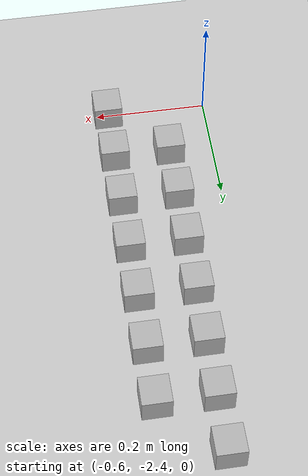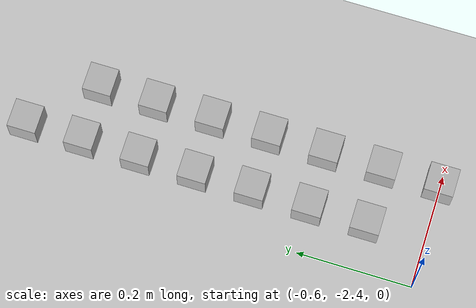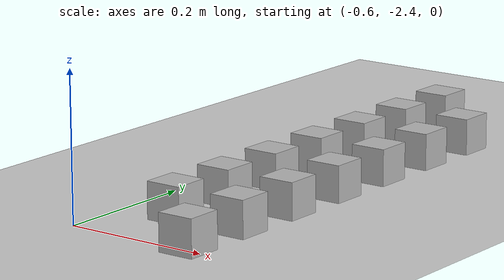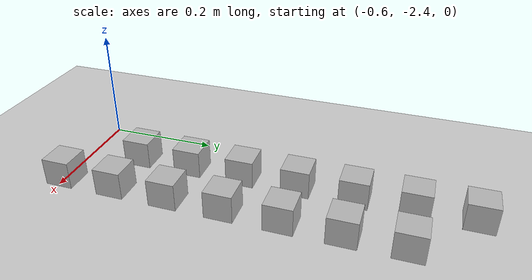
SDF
<sdf version="1.6">
 <world name="default">
  <model name="ground_plane">
   <static>1</static>
   <link name="link">
    <collision name="collision">
     <geometry><plane><normal>0 0 1</normal><size>100 100</size></plane></geometry>
     <surface><friction><ode><mu>100</mu><mu2>50</mu2></ode></friction></surface>
    </collision>
    <visual name="visual">
     <cast_shadows>0</cast_shadows>
     <geometry><plane><normal>0 0 1</normal><size>100 100</size></plane></geometry>
     <material>
      <script><uri>file://media/materials/scripts/gazebo.material</uri><name>Gazebo/Grey</name></script>
     </material>
    </visual>
   </link>
  </model>
  <model name="at321">
   <static>0</static>
   <link name="link">
    <inertial>
     <mass>0.01</mass>
     <inertia><ixx>4e-05</ixx><ixy>0</ixy><ixz>0</ixz><iyy>4e-05</iyy><iyz>0</iyz><izz>4e-05</izz></inertia>
    </inertial>
    <visual name="visual">
     <geometry><box><size>0.05 0.05 0.05</size></box></geometry>
     <material>
      <script>
       <uri>model://at0/materials/scripts</uri>
       <uri>model://at0/materials/textures</uri>
       <name>at0/Diffuse</name>
      </script>
     </material>
    </visual>
    <collision name="collision">
     <geometry><box><size>0.05 0.05 0.05</size></box></geometry>
     <surface><friction><ode><mu>0.8</mu><mu2>0.7</mu2></ode></friction></surface>
    </collision>
   </link>
   <pose>-0.419724 -2.398 0.025 0 -0 0</pose>
  </model>
  <model name="at328">
   <static>0</static>
   <link name="link">
    <inertial>
     <mass>0.01</mass>
     <inertia><ixx>4e-05</ixx><ixy>0</ixy><ixz>0</ixz><iyy>4e-05</iyy><iyz>0</iyz><izz>4e-05</izz></inertia>
    </inertial>
    <visual name="visual">
     <geometry><box><size>0.05 0.05 0.05</size></box></geometry>
     <material>
      <script>
       <uri>model://at0/materials/scripts</uri>
       <uri>model://at0/materials/textures</uri>
       <name>at0/Diffuse</name>
      </script>
     </material>
    </visual>
    <collision name="collision">
     <geometry><box><size>0.05 0.05 0.05</size></box></geometry>
     <surface><friction><ode><mu>0.8</mu><mu2>0.7</mu2></ode></friction></surface>
    </collision>
   </link>
   <pose>-0.519724 -2.298 0.025 0 -0 0</pose>
  </model>
  <model name="at329">
   <static>0</static>
   <link name="link">
    <inertial>
     <mass>0.01</mass>
     <inertia><ixx>4e-05</ixx><ixy>0</ixy><ixz>0</ixz><iyy>4e-05</iyy><iyz>0</iyz><izz>4e-05</izz></inertia>
    </inertial>
    <visual name="visual">
     <geometry><box><size>0.05 0.05 0.05</size></box></geometry>
     <material>
      <script>
       <uri>model://at0/materials/scripts</uri>
       <uri>model://at0/materials/textures</uri>
       <name>at0/Diffuse</name>
      </script>
     </material>
    </visual>
    <collision name="collision">
     <geometry><box><size>0.05 0.05 0.05</size></box></geometry>
     <surface><friction><ode><mu>0.8</mu><mu2>0.7</mu2></ode></friction></surface>
    </collision>
   </link>
   <pose>-0.419724 -2.298 0.025 0 -0 0</pose>
  </model>
  <model name="at336">
   <static>0</static>
   <link name="link">
    <inertial>
     <mass>0.01</mass>
     <inertia><ixx>4e-05</ixx><ixy>0</ixy><ixz>0</ixz><iyy>4e-05</iyy><iyz>0</iyz><izz>4e-05</izz></inertia>
    </inertial>
    <visual name="visual">
     <geometry><box><size>0.05 0.05 0.05</size></box></geometry>
     <material>
      <script>
       <uri>model://at0/materials/scripts</uri>
       <uri>model://at0/materials/textures</uri>
       <name>at0/Diffuse</name>
      </script>
     </material>
    </visual>
    <collision name="collision">
     <geometry><box><size>0.05 0.05 0.05</size></box></geometry>
     <surface><friction><ode><mu>0.8</mu><mu2>0.7</mu2></ode></friction></surface>
    </collision>
   </link>
   <pose>-0.519724 -2.198 0.025 0 -0 0</pose>
  </model>
  <model name="at337">
   <static>0</static>
   <link name="link">
    <inertial>
     <mass>0.01</mass>
     <inertia><ixx>4e-05</ixx><ixy>0</ixy><ixz>0</ixz><iyy>4e-05</iyy><iyz>0</iyz><izz>4e-05</izz></inertia>
    </inertial>
    <visual name="visual">
     <geometry><box><size>0.05 0.05 0.05</size></box></geometry>
     <material>
      <script>
       <uri>model://at0/materials/scripts</uri>
       <uri>model://at0/materials/textures</uri>
       <name>at0/Diffuse</name>
      </script>
     </material>
    </visual>
    <collision name="collision">
     <geometry><box><size>0.05 0.05 0.05</size></box></geometry>
     <surface><friction><ode><mu>0.8</mu><mu2>0.7</mu2></ode></friction></surface>
    </collision>
   </link>
   <pose>-0.419724 -2.198 0.025 0 -0 0</pose>
  </model>
  <model name="at344">
   <static>0</static>
   <link name="link">
    <inertial>
     <mass>0.01</mass>
     <inertia><ixx>4e-05</ixx><ixy>0</ixy><ixz>0</ixz><iyy>4e-05</iyy><iyz>0</iyz><izz>4e-05</izz></inertia>
    </inertial>
    <visual name="visual">
     <geometry><box><size>0.05 0.05 0.05</size></box></geometry>
     <material>
      <script>
       <uri>model://at0/materials/scripts</uri>
       <uri>model://at0/materials/textures</uri>
       <name>at0/Diffuse</name>
      </script>
     </material>
    </visual>
    <collision name="collision">
     <geometry><box><size>0.05 0.05 0.05</size></box></geometry>
     <surface><friction><ode><mu>0.8</mu><mu2>0.7</mu2></ode></friction></surface>
    </collision>
   </link>
   <pose>-0.519724 -2.098 0.025 0 -0 0</pose>
  </model>
  <model name="at345">
   <static>0</static>
   <link name="link">
    <inertial>
     <mass>0.01</mass>
     <inertia><ixx>4e-05</ixx><ixy>0</ixy><ixz>0</ixz><iyy>4e-05</iyy><iyz>0</iyz><izz>4e-05</izz></inertia>
    </inertial>
    <visual name="visual">
     <geometry><box><size>0.05 0.05 0.05</size></box></geometry>
     <material>
      <script>
       <uri>model://at0/materials/scripts</uri>
       <uri>model://at0/materials/textures</uri>
       <name>at0/Diffuse</name>
      </script>
     </material>
    </visual>
    <collision name="collision">
     <geometry><box><size>0.05 0.05 0.05</size></box></geometry>
     <surface><friction><ode><mu>0.8</mu><mu2>0.7</mu2></ode></friction></surface>
    </collision>
   </link>
   <pose>-0.419724 -2.098 0.025 0 -0 0</pose>
  </model>
  <model name="at352">
   <static>0</static>
   <link name="link">
    <inertial>
     <mass>0.01</mass>
     <inertia><ixx>4e-05</ixx><ixy>0</ixy><ixz>0</ixz><iyy>4e-05</iyy><iyz>0</iyz><izz>4e-05</izz></inertia>
    </inertial>
    <visual name="visual">
     <geometry><box><size>0.05 0.05 0.05</size></box></geometry>
     <material>
      <script>
       <uri>model://at0/materials/scripts</uri>
       <uri>model://at0/materials/textures</uri>
       <name>at0/Diffuse</name>
      </script>
     </material>
    </visual>
    <collision name="collision">
     <geometry><box><size>0.05 0.05 0.05</size></box></geometry>
     <surface><friction><ode><mu>0.8</mu><mu2>0.7</mu2></ode></friction></surface>
    </collision>
   </link>
   <pose>-0.519724 -1.998 0.025 0 -0 0</pose>
  </model>
  <model name="at353">
   <static>0</static>
   <link name="link">
    <inertial>
     <mass>0.01</mass>
     <inertia><ixx>4e-05</ixx><ixy>0</ixy><ixz>0</ixz><iyy>4e-05</iyy><iyz>0</iyz><izz>4e-05</izz></inertia>
    </inertial>
    <visual name="visual">
     <geometry><box><size>0.05 0.05 0.05</size></box></geometry>
     <material>
      <script>
       <uri>model://at0/materials/scripts</uri>
       <uri>model://at0/materials/textures</uri>
       <name>at0/Diffuse</name>
      </script>
     </material>
    </visual>
    <collision name="collision">
     <geometry><box><size>0.05 0.05 0.05</size></box></geometry>
     <surface><friction><ode><mu>0.8</mu><mu2>0.7</mu2></ode></friction></surface>
    </collision>
   </link>
   <pose>-0.419724 -1.998 0.025 0 -0 0</pose>
  </model>
  <model name="at360">
   <static>0</static>
   <link name="link">
    <inertial>
     <mass>0.01</mass>
     <inertia><ixx>4e-05</ixx><ixy>0</ixy><ixz>0</ixz><iyy>4e-05</iyy><iyz>0</iyz><izz>4e-05</izz></inertia>
    </inertial>
    <visual name="visual">
     <geometry><box><size>0.05 0.05 0.05</size></box></geometry>
     <material>
      <script>
       <uri>model://at0/materials/scripts</uri>
       <uri>model://at0/materials/textures</uri>
       <name>at0/Diffuse</name>
      </script>
     </material>
    </visual>
    <collision name="collision">
     <geometry><box><size>0.05 0.05 0.05</size></box></geometry>
     <surface><friction><ode><mu>0.8</mu><mu2>0.7</mu2></ode></friction></surface>
    </collision>
   </link>
   <pose>-0.519724 -1.898 0.025 0 -0 0</pose>
  </model>
  <model name="at361">
   <static>0</static>
   <link name="link">
    <inertial>
     <mass>0.01</mass>
     <inertia><ixx>4e-05</ixx><ixy>0</ixy><ixz>0</ixz><iyy>4e-05</iyy><iyz>0</iyz><izz>4e-05</izz></inertia>
    </inertial>
    <visual name="visual">
     <geometry><box><size>0.05 0.05 0.05</size></box></geometry>
     <material>
      <script>
       <uri>model://at0/materials/scripts</uri>
       <uri>model://at0/materials/textures</uri>
       <name>at0/Diffuse</name>
      </script>
     </material>
    </visual>
    <collision name="collision">
     <geometry><box><size>0.05 0.05 0.05</size></box></geometry>
     <surface><friction><ode><mu>0.8</mu><mu2>0.7</mu2></ode></friction></surface>
    </collision>
   </link>
   <pose>-0.419724 -1.898 0.025 0 -0 0</pose>
  </model>
  <model name="at368">
   <static>0</static>
   <link name="link">
    <inertial>
     <mass>0.01</mass>
     <inertia><ixx>4e-05</ixx><ixy>0</ixy><ixz>0</ixz><iyy>4e-05</iyy><iyz>0</iyz><izz>4e-05</izz></inertia>
    </inertial>
    <visual name="visual">
     <geometry><box><size>0.05 0.05 0.05</size></box></geometry>
     <material>
      <script>
       <uri>model://at0/materials/scripts</uri>
       <uri>model://at0/materials/textures</uri>
       <name>at0/Diffuse</name>
      </script>
     </material>
    </visual>
    <collision name="collision">
     <geometry><box><size>0.05 0.05 0.05</size></box></geometry>
     <surface><friction><ode><mu>0.8</mu><mu2>0.7</mu2></ode></friction></surface>
    </collision>
   </link>
   <pose>-0.519724 -1.798 0.025 0 -0 0</pose>
  </model>
  <model name="at369">
   <static>0</static>
   <link name="link">
    <inertial>
     <mass>0.01</mass>
     <inertia><ixx>4e-05</ixx><ixy>0</ixy><ixz>0</ixz><iyy>4e-05</iyy><iyz>0</iyz><izz>4e-05</izz></inertia>
    </inertial>
    <visual name="visual">
     <geometry><box><size>0.05 0.05 0.05</size></box></geometry>
     <material>
      <script>
       <uri>model://at0/materials/scripts</uri>
       <uri>model://at0/materials/textures</uri>
       <name>at0/Diffuse</name>
      </script>
     </material>
    </visual>
    <collision name="collision">
     <geometry><box><size>0.05 0.05 0.05</size></box></geometry>
     <surface><friction><ode><mu>0.8</mu><mu2>0.7</mu2></ode></friction></surface>
    </collision>
   </link>
   <pose>-0.419724 -1.798 0.025 0 -0 0</pose>
  </model>
  <model name="at376">
   <static>0</static>
   <link name="link">
    <inertial>
     <mass>0.01</mass>
     <inertia><ixx>4e-05</ixx><ixy>0</ixy><ixz>0</ixz><iyy>4e-05</iyy><iyz>0</iyz><izz>4e-05</izz></inertia>
    </inertial>
    <visual name="visual">
     <geometry><box><size>0.05 0.05 0.05</size></box></geometry>
     <material>
      <script>
       <uri>model://at0/materials/scripts</uri>
       <uri>model://at0/materials/textures</uri>
       <name>at0/Diffuse</name>
      </script>
     </material>
    </visual>
    <collision name="collision">
     <geometry><box><size>0.05 0.05 0.05</size></box></geometry>
     <surface><friction><ode><mu>0.8</mu><mu2>0.7</mu2></ode></friction></surface>
    </collision>
   </link>
   <pose>-0.519724 -1.698 0.025 0 -0 0</pose>
  </model>
 </world>
</sdf>
